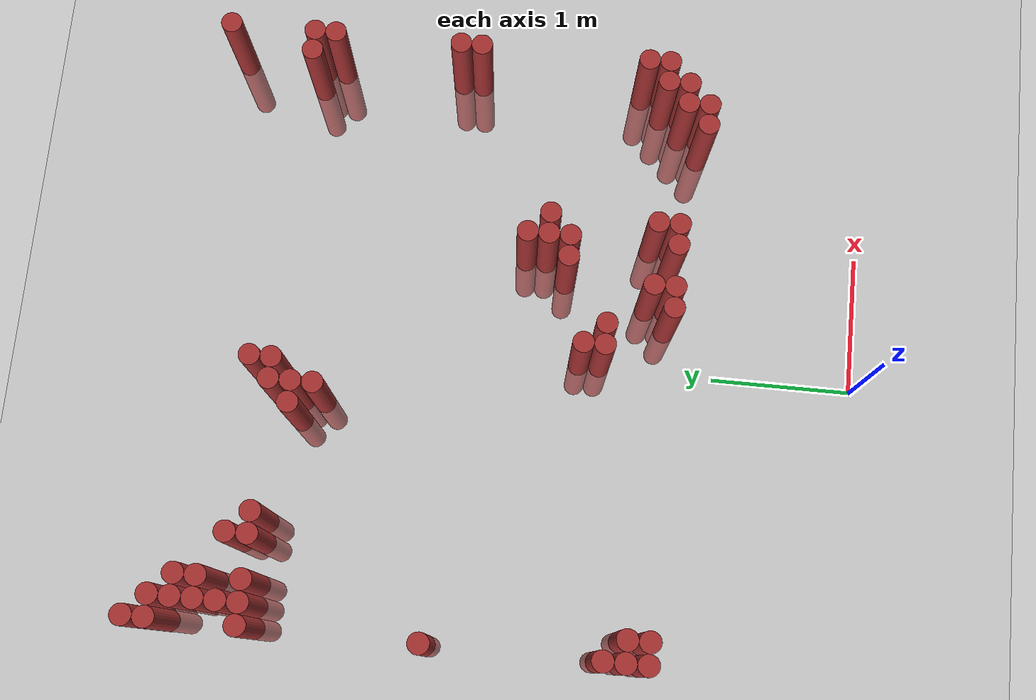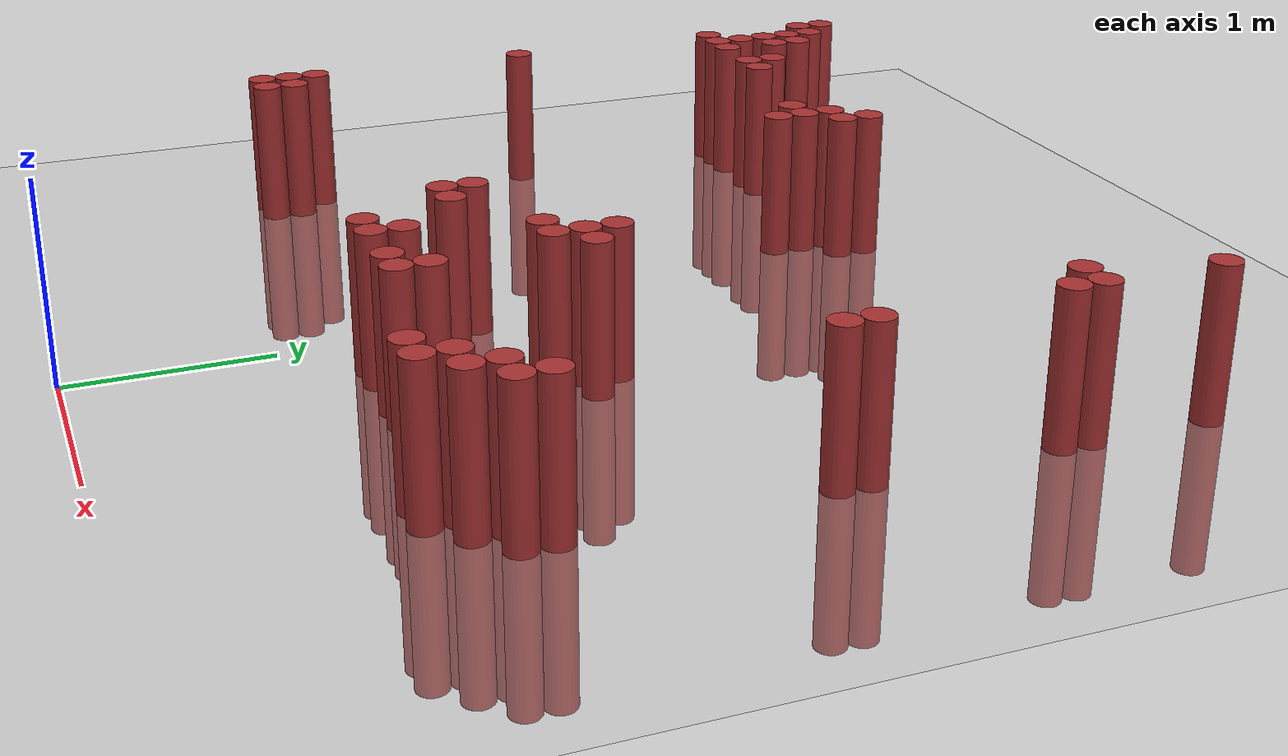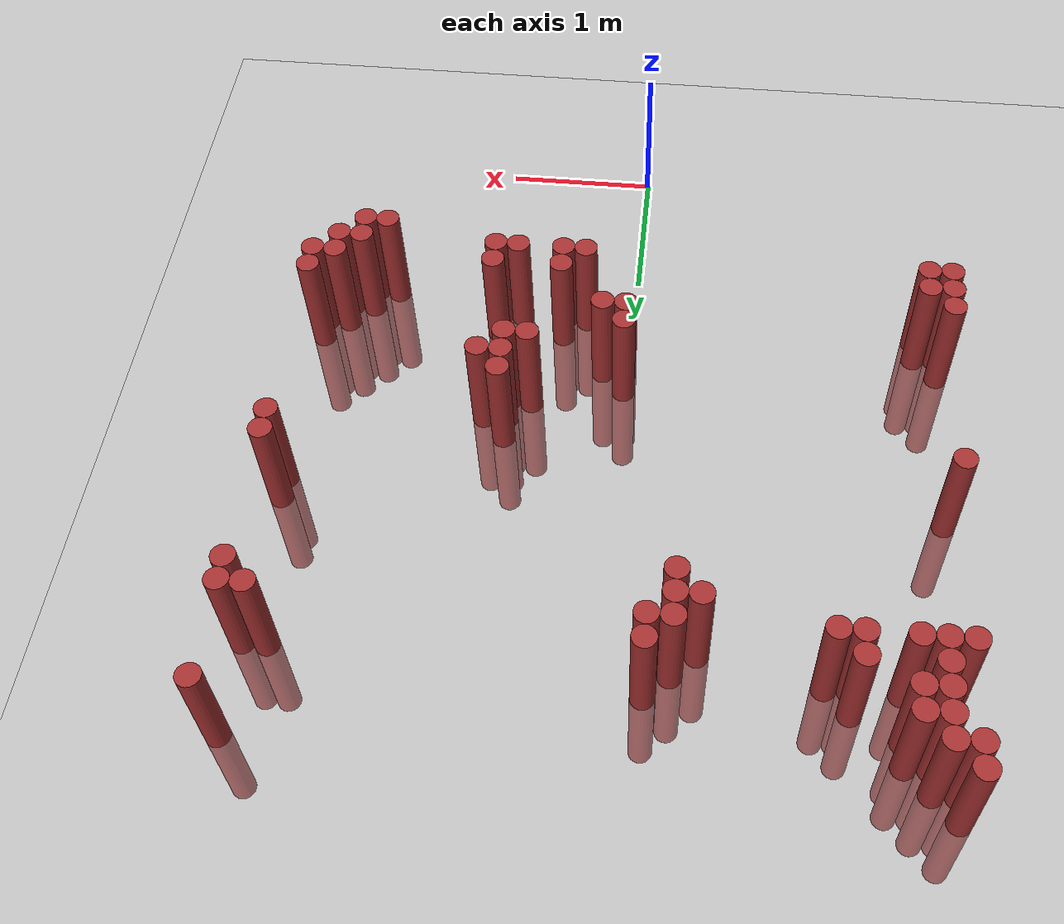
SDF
<sdf version="1.6">
 <world name="default">
  <model name="ground_plane">
   <static>1</static>
   <link name="link">
    <collision name="collision">
     <geometry><plane><normal>0 0 1</normal><size>100 100</size></plane></geometry>
     <surface><friction><ode><mu>100</mu><mu2>50</mu2></ode></friction></surface>
    </collision>
    <visual name="visual">
     <cast_shadows>0</cast_shadows>
     <geometry><plane><normal>0 0 1</normal><size>100 100</size></plane></geometry>
     <material>
      <script><uri>file://media/materials/scripts/gazebo.material</uri><name>Gazebo/Grey</name></script>
     </material>
    </visual>
   </link>
  </model>
  <model name="unit_cylinder_329">
   <static>1</static>
   <pose>-2.075000 1.375000 0.000000 0.000000 0.000000 0.000000</pose>
   <link name="link">
    <inertial>
     <mass>1</mass>
     <inertia><ixx>0.145833</ixx><ixy>0</ixy><ixz>0</ixz><iyy>0.145833</iyy><iyz>0</iyz><izz>0.125</izz></inertia>
    </inertial>
    <collision name="collision">
     <geometry><cylinder><radius>0.075000</radius><length>1.5</length></cylinder></geometry>
    </collision>
    <visual name="visual">
     <geometry><cylinder><radius>0.075000</radius><length>1.5</length></cylinder></geometry>
     <material>
      <ambient>0.648000 0.192000 0.192000 1</ambient>
      <diffuse>0.648000 0.192000 0.192000 1</diffuse>
     </material>
     <material>
      <script><name>Gazebo/Grey</name><uri>file://media/materials/scripts/gazebo.material</uri></script>
     </material>
    </visual>
   </link>
  </model>
  <model name="unit_cylinder_330">
   <static>1</static>
   <pose>-2.075000 1.525000 0.000000 0.000000 0.000000 0.000000</pose>
   <link name="link">
    <inertial>
     <mass>1</mass>
     <inertia><ixx>0.145833</ixx><ixy>0</ixy><ixz>0</ixz><iyy>0.145833</iyy><iyz>0</iyz><izz>0.125</izz></inertia>
    </inertial>
    <collision name="collision">
     <geometry><cylinder><radius>0.075000</radius><length>1.5</length></cylinder></geometry>
    </collision>
    <visual name="visual">
     <geometry><cylinder><radius>0.075000</radius><length>1.5</length></cylinder></geometry>
     <material>
      <ambient>0.648000 0.192000 0.192000 1</ambient>
      <diffuse>0.648000 0.192000 0.192000 1</diffuse>
     </material>
     <material>
      <script><name>Gazebo/Grey</name><uri>file://media/materials/scripts/gazebo.material</uri></script>
     </material>
    </visual>
   </link>
  </model>
  <model name="unit_cylinder_331">
   <static>1</static>
   <pose>-2.075000 1.675000 0.000000 0.000000 0.000000 0.000000</pose>
   <link name="link">
    <inertial>
     <mass>1</mass>
     <inertia><ixx>0.145833</ixx><ixy>0</ixy><ixz>0</ixz><iyy>0.145833</iyy><iyz>0</iyz><izz>0.125</izz></inertia>
    </inertial>
    <collision name="collision">
     <geometry><cylinder><radius>0.075000</radius><length>1.5</length></cylinder></geometry>
    </collision>
    <visual name="visual">
     <geometry><cylinder><radius>0.075000</radius><length>1.5</length></cylinder></geometry>
     <material>
      <ambient>0.648000 0.192000 0.192000 1</ambient>
      <diffuse>0.648000 0.192000 0.192000 1</diffuse>
     </material>
     <material>
      <script><name>Gazebo/Grey</name><uri>file://media/materials/scripts/gazebo.material</uri></script>
     </material>
    </visual>
   </link>
  </model>
  <model name="unit_cylinder_332">
   <static>1</static>
   <pose>-2.075000 2.875000 0.000000 0.000000 0.000000 0.000000</pose>
   <link name="link">
    <inertial>
     <mass>1</mass>
     <inertia><ixx>0.145833</ixx><ixy>0</ixy><ixz>0</ixz><iyy>0.145833</iyy><iyz>0</iyz><izz>0.125</izz></inertia>
    </inertial>
    <collision name="collision">
     <geometry><cylinder><radius>0.075000</radius><length>1.5</length></cylinder></geometry>
    </collision>
    <visual name="visual">
     <geometry><cylinder><radius>0.075000</radius><length>1.5</length></cylinder></geometry>
     <material>
      <ambient>0.648000 0.192000 0.192000 1</ambient>
      <diffuse>0.648000 0.192000 0.192000 1</diffuse>
     </material>
     <material>
      <script><name>Gazebo/Grey</name><uri>file://media/materials/scripts/gazebo.material</uri></script>
     </material>
    </visual>
   </link>
  </model>
  <model name="unit_cylinder_333">
   <static>1</static>
   <pose>-2.075000 4.075000 0.000000 0.000000 0.000000 0.000000</pose>
   <link name="link">
    <inertial>
     <mass>1</mass>
     <inertia><ixx>0.145833</ixx><ixy>0</ixy><ixz>0</ixz><iyy>0.145833</iyy><iyz>0</iyz><izz>0.125</izz></inertia>
    </inertial>
    <collision name="collision">
     <geometry><cylinder><radius>0.075000</radius><length>1.5</length></cylinder></geometry>
    </collision>
    <visual name="visual">
     <geometry><cylinder><radius>0.075000</radius><length>1.5</length></cylinder></geometry>
     <material>
      <ambient>0.648000 0.192000 0.192000 1</ambient>
      <diffuse>0.648000 0.192000 0.192000 1</diffuse>
     </material>
     <material>
      <script><name>Gazebo/Grey</name><uri>file://media/materials/scripts/gazebo.material</uri></script>
     </material>
    </visual>
   </link>
  </model>
  <model name="unit_cylinder_334">
   <static>1</static>
   <pose>-2.075000 4.675000 0.000000 0.000000 0.000000 0.000000</pose>
   <link name="link">
    <inertial>
     <mass>1</mass>
     <inertia><ixx>0.145833</ixx><ixy>0</ixy><ixz>0</ixz><iyy>0.145833</iyy><iyz>0</iyz><izz>0.125</izz></inertia>
    </inertial>
    <collision name="collision">
     <geometry><cylinder><radius>0.075000</radius><length>1.5</length></cylinder></geometry>
    </collision>
    <visual name="visual">
     <geometry><cylinder><radius>0.075000</radius><length>1.5</length></cylinder></geometry>
     <material>
      <ambient>0.648000 0.192000 0.192000 1</ambient>
      <diffuse>0.648000 0.192000 0.192000 1</diffuse>
     </material>
     <material>
      <script><name>Gazebo/Grey</name><uri>file://media/materials/scripts/gazebo.material</uri></script>
     </material>
    </visual>
   </link>
  </model>
  <model name="unit_cylinder_335">
   <static>1</static>
   <pose>-2.075000 4.825000 0.000000 0.000000 0.000000 0.000000</pose>
   <link name="link">
    <inertial>
     <mass>1</mass>
     <inertia><ixx>0.145833</ixx><ixy>0</ixy><ixz>0</ixz><iyy>0.145833</iyy><iyz>0</iyz><izz>0.125</izz></inertia>
    </inertial>
    <collision name="collision">
     <geometry><cylinder><radius>0.075000</radius><length>1.5</length></cylinder></geometry>
    </collision>
    <visual name="visual">
     <geometry><cylinder><radius>0.075000</radius><length>1.5</length></cylinder></geometry>
     <material>
      <ambient>0.648000 0.192000 0.192000 1</ambient>
      <diffuse>0.648000 0.192000 0.192000 1</diffuse>
     </material>
     <material>
      <script><name>Gazebo/Grey</name><uri>file://media/materials/scripts/gazebo.material</uri></script>
     </material>
    </visual>
   </link>
  </model>
  <model name="unit_cylinder_336">
   <static>1</static>
   <pose>-1.925000 1.375000 0.000000 0.000000 0.000000 0.000000</pose>
   <link name="link">
    <inertial>
     <mass>1</mass>
     <inertia><ixx>0.145833</ixx><ixy>0</ixy><ixz>0</ixz><iyy>0.145833</iyy><iyz>0</iyz><izz>0.125</izz></inertia>
    </inertial>
    <collision name="collision">
     <geometry><cylinder><radius>0.075000</radius><length>1.5</length></cylinder></geometry>
    </collision>
    <visual name="visual">
     <geometry><cylinder><radius>0.075000</radius><length>1.5</length></cylinder></geometry>
     <material>
      <ambient>0.648000 0.192000 0.192000 1</ambient>
      <diffuse>0.648000 0.192000 0.192000 1</diffuse>
     </material>
     <material>
      <script><name>Gazebo/Grey</name><uri>file://media/materials/scripts/gazebo.material</uri></script>
     </material>
    </visual>
   </link>
  </model>
  <model name="unit_cylinder_337">
   <static>1</static>
   <pose>-1.925000 1.525000 0.000000 0.000000 0.000000 0.000000</pose>
   <link name="link">
    <inertial>
     <mass>1</mass>
     <inertia><ixx>0.145833</ixx><ixy>0</ixy><ixz>0</ixz><iyy>0.145833</iyy><iyz>0</iyz><izz>0.125</izz></inertia>
    </inertial>
    <collision name="collision">
     <geometry><cylinder><radius>0.075000</radius><length>1.5</length></cylinder></geometry>
    </collision>
    <visual name="visual">
     <geometry><cylinder><radius>0.075000</radius><length>1.5</length></cylinder></geometry>
     <material>
      <ambient>0.648000 0.192000 0.192000 1</ambient>
      <diffuse>0.648000 0.192000 0.192000 1</diffuse>
     </material>
     <material>
      <script><name>Gazebo/Grey</name><uri>file://media/materials/scripts/gazebo.material</uri></script>
     </material>
    </visual>
   </link>
  </model>
  <model name="unit_cylinder_338">
   <static>1</static>
   <pose>-1.925000 4.075000 0.000000 0.000000 0.000000 0.000000</pose>
   <link name="link">
    <inertial>
     <mass>1</mass>
     <inertia><ixx>0.145833</ixx><ixy>0</ixy><ixz>0</ixz><iyy>0.145833</iyy><iyz>0</iyz><izz>0.125</izz></inertia>
    </inertial>
    <collision name="collision">
     <geometry><cylinder><radius>0.075000</radius><length>1.5</length></cylinder></geometry>
    </collision>
    <visual name="visual">
     <geometry><cylinder><radius>0.075000</radius><length>1.5</length></cylinder></geometry>
     <material>
      <ambient>0.648000 0.192000 0.192000 1</ambient>
      <diffuse>0.648000 0.192000 0.192000 1</diffuse>
     </material>
     <material>
      <script><name>Gazebo/Grey</name><uri>file://media/materials/scripts/gazebo.material</uri></script>
     </material>
    </visual>
   </link>
  </model>
  <model name="unit_cylinder_339">
   <static>1</static>
   <pose>-1.925000 4.225000 0.000000 0.000000 0.000000 0.000000</pose>
   <link name="link">
    <inertial>
     <mass>1</mass>
     <inertia><ixx>0.145833</ixx><ixy>0</ixy><ixz>0</ixz><iyy>0.145833</iyy><iyz>0</iyz><izz>0.125</izz></inertia>
    </inertial>
    <collision name="collision">
     <geometry><cylinder><radius>0.075000</radius><length>1.5</length></cylinder></geometry>
    </collision>
    <visual name="visual">
     <geometry><cylinder><radius>0.075000</radius><length>1.5</length></cylinder></geometry>
     <material>
      <ambient>0.648000 0.192000 0.192000 1</ambient>
      <diffuse>0.648000 0.192000 0.192000 1</diffuse>
     </material>
     <material>
      <script><name>Gazebo/Grey</name><uri>file://media/materials/scripts/gazebo.material</uri></script>
     </material>
    </visual>
   </link>
  </model>
  <model name="unit_cylinder_340">
   <static>1</static>
   <pose>-1.925000 4.375000 0.000000 0.000000 0.000000 0.000000</pose>
   <link name="link">
    <inertial>
     <mass>1</mass>
     <inertia><ixx>0.145833</ixx><ixy>0</ixy><ixz>0</ixz><iyy>0.145833</iyy><iyz>0</iyz><izz>0.125</izz></inertia>
    </inertial>
    <collision name="collision">
     <geometry><cylinder><radius>0.075000</radius><length>1.5</length></cylinder></geometry>
    </collision>
    <visual name="visual">
     <geometry><cylinder><radius>0.075000</radius><length>1.5</length></cylinder></geometry>
     <material>
      <ambient>0.648000 0.192000 0.192000 1</ambient>
      <diffuse>0.648000 0.192000 0.192000 1</diffuse>
     </material>
     <material>
      <script><name>Gazebo/Grey</name><uri>file://media/materials/scripts/gazebo.material</uri></script>
     </material>
    </visual>
   </link>
  </model>
  <model name="unit_cylinder_341">
   <static>1</static>
   <pose>-1.925000 4.525000 0.000000 0.000000 0.000000 0.000000</pose>
   <link name="link">
    <inertial>
     <mass>1</mass>
     <inertia><ixx>0.145833</ixx><ixy>0</ixy><ixz>0</ixz><iyy>0.145833</iyy><iyz>0</iyz><izz>0.125</izz></inertia>
    </inertial>
    <collision name="collision">
     <geometry><cylinder><radius>0.075000</radius><length>1.5</length></cylinder></geometry>
    </collision>
    <visual name="visual">
     <geometry><cylinder><radius>0.075000</radius><length>1.5</length></cylinder></geometry>
     <material>
      <ambient>0.648000 0.192000 0.192000 1</ambient>
      <diffuse>0.648000 0.192000 0.192000 1</diffuse>
     </material>
     <material>
      <script><name>Gazebo/Grey</name><uri>file://media/materials/scripts/gazebo.material</uri></script>
     </material>
    </visual>
   </link>
  </model>
  <model name="unit_cylinder_342">
   <static>1</static>
   <pose>-1.925000 4.675000 0.000000 0.000000 0.000000 0.000000</pose>
   <link name="link">
    <inertial>
     <mass>1</mass>
     <inertia><ixx>0.145833</ixx><ixy>0</ixy><ixz>0</ixz><iyy>0.145833</iyy><iyz>0</iyz><izz>0.125</izz></inertia>
    </inertial>
    <collision name="collision">
     <geometry><cylinder><radius>0.075000</radius><length>1.5</length></cylinder></geometry>
    </collision>
    <visual name="visual">
     <geometry><cylinder><radius>0.075000</radius><length>1.5</length></cylinder></geometry>
     <material>
      <ambient>0.648000 0.192000 0.192000 1</ambient>
      <diffuse>0.648000 0.192000 0.192000 1</diffuse>
     </material>
     <material>
      <script><name>Gazebo/Grey</name><uri>file://media/materials/scripts/gazebo.material</uri></script>
     </material>
    </visual>
   </link>
  </model>
  <model name="unit_cylinder_343">
   <static>1</static>
   <pose>-1.775000 4.075000 0.000000 0.000000 0.000000 0.000000</pose>
   <link name="link">
    <inertial>
     <mass>1</mass>
     <inertia><ixx>0.145833</ixx><ixy>0</ixy><ixz>0</ixz><iyy>0.145833</iyy><iyz>0</iyz><izz>0.125</izz></inertia>
    </inertial>
    <collision name="collision">
     <geometry><cylinder><radius>0.075000</radius><length>1.5</length></cylinder></geometry>
    </collision>
    <visual name="visual">
     <geometry><cylinder><radius>0.075000</radius><length>1.5</length></cylinder></geometry>
     <material>
      <ambient>0.648000 0.192000 0.192000 1</ambient>
      <diffuse>0.648000 0.192000 0.192000 1</diffuse>
     </material>
     <material>
      <script><name>Gazebo/Grey</name><uri>file://media/materials/scripts/gazebo.material</uri></script>
     </material>
    </visual>
   </link>
  </model>
  <model name="unit_cylinder_344">
   <static>1</static>
   <pose>-1.775000 4.375000 0.000000 0.000000 0.000000 0.000000</pose>
   <link name="link">
    <inertial>
     <mass>1</mass>
     <inertia><ixx>0.145833</ixx><ixy>0</ixy><ixz>0</ixz><iyy>0.145833</iyy><iyz>0</iyz><izz>0.125</izz></inertia>
    </inertial>
    <collision name="collision">
     <geometry><cylinder><radius>0.075000</radius><length>1.5</length></cylinder></geometry>
    </collision>
    <visual name="visual">
     <geometry><cylinder><radius>0.075000</radius><length>1.5</length></cylinder></geometry>
     <material>
      <ambient>0.648000 0.192000 0.192000 1</ambient>
      <diffuse>0.648000 0.192000 0.192000 1</diffuse>
     </material>
     <material>
      <script><name>Gazebo/Grey</name><uri>file://media/materials/scripts/gazebo.material</uri></script>
     </material>
    </visual>
   </link>
  </model>
  <model name="unit_cylinder_345">
   <static>1</static>
   <pose>-1.775000 4.525000 0.000000 0.000000 0.000000 0.000000</pose>
   <link name="link">
    <inertial>
     <mass>1</mass>
     <inertia><ixx>0.145833</ixx><ixy>0</ixy><ixz>0</ixz><iyy>0.145833</iyy><iyz>0</iyz><izz>0.125</izz></inertia>
    </inertial>
    <collision name="collision">
     <geometry><cylinder><radius>0.075000</radius><length>1.5</length></cylinder></geometry>
    </collision>
    <visual name="visual">
     <geometry><cylinder><radius>0.075000</radius><length>1.5</length></cylinder></geometry>
     <material>
      <ambient>0.648000 0.192000 0.192000 1</ambient>
      <diffuse>0.648000 0.192000 0.192000 1</diffuse>
     </material>
     <material>
      <script><name>Gazebo/Grey</name><uri>file://media/materials/scripts/gazebo.material</uri></script>
     </material>
    </visual>
   </link>
  </model>
  <model name="unit_cylinder_346">
   <static>1</static>
   <pose>-1.475000 4.075000 0.000000 0.000000 0.000000 0.000000</pose>
   <link name="link">
    <inertial>
     <mass>1</mass>
     <inertia><ixx>0.145833</ixx><ixy>0</ixy><ixz>0</ixz><iyy>0.145833</iyy><iyz>0</iyz><izz>0.125</izz></inertia>
    </inertial>
    <collision name="collision">
     <geometry><cylinder><radius>0.075000</radius><length>1.5</length></cylinder></geometry>
    </collision>
    <visual name="visual">
     <geometry><cylinder><radius>0.075000</radius><length>1.5</length></cylinder></geometry>
     <material>
      <ambient>0.648000 0.192000 0.192000 1</ambient>
      <diffuse>0.648000 0.192000 0.192000 1</diffuse>
     </material>
     <material>
      <script><name>Gazebo/Grey</name><uri>file://media/materials/scripts/gazebo.material</uri></script>
     </material>
    </visual>
   </link>
  </model>
  <model name="unit_cylinder_347">
   <static>1</static>
   <pose>-1.475000 4.225000 0.000000 0.000000 0.000000 0.000000</pose>
   <link name="link">
    <inertial>
     <mass>1</mass>
     <inertia><ixx>0.145833</ixx><ixy>0</ixy><ixz>0</ixz><iyy>0.145833</iyy><iyz>0</iyz><izz>0.125</izz></inertia>
    </inertial>
    <collision name="collision">
     <geometry><cylinder><radius>0.075000</radius><length>1.5</length></cylinder></geometry>
    </collision>
    <visual name="visual">
     <geometry><cylinder><radius>0.075000</radius><length>1.5</length></cylinder></geometry>
     <material>
      <ambient>0.648000 0.192000 0.192000 1</ambient>
      <diffuse>0.648000 0.192000 0.192000 1</diffuse>
     </material>
     <material>
      <script><name>Gazebo/Grey</name><uri>file://media/materials/scripts/gazebo.material</uri></script>
     </material>
    </visual>
   </link>
  </model>
  <model name="unit_cylinder_348">
   <static>1</static>
   <pose>-1.325000 4.075000 0.000000 0.000000 0.000000 0.000000</pose>
   <link name="link">
    <inertial>
     <mass>1</mass>
     <inertia><ixx>0.145833</ixx><ixy>0</ixy><ixz>0</ixz><iyy>0.145833</iyy><iyz>0</iyz><izz>0.125</izz></inertia>
    </inertial>
    <collision name="collision">
     <geometry><cylinder><radius>0.075000</radius><length>1.5</length></cylinder></geometry>
    </collision>
    <visual name="visual">
     <geometry><cylinder><radius>0.075000</radius><length>1.5</length></cylinder></geometry>
     <material>
      <ambient>0.648000 0.192000 0.192000 1</ambient>
      <diffuse>0.648000 0.192000 0.192000 1</diffuse>
     </material>
     <material>
      <script><name>Gazebo/Grey</name><uri>file://media/materials/scripts/gazebo.material</uri></script>
     </material>
    </visual>
   </link>
  </model>
  <model name="unit_cylinder_354">
   <static>1</static>
   <pose>-0.575000 3.925000 0.000000 0.000000 0.000000 0.000000</pose>
   <link name="link">
    <inertial>
     <mass>1</mass>
     <inertia><ixx>0.145833</ixx><ixy>0</ixy><ixz>0</ixz><iyy>0.145833</iyy><iyz>0</iyz><izz>0.125</izz></inertia>
    </inertial>
    <collision name="collision">
     <geometry><cylinder><radius>0.075000</radius><length>1.5</length></cylinder></geometry>
    </collision>
    <visual name="visual">
     <geometry><cylinder><radius>0.075000</radius><length>1.5</length></cylinder></geometry>
     <material>
      <ambient>0.648000 0.192000 0.192000 1</ambient>
      <diffuse>0.648000 0.192000 0.192000 1</diffuse>
     </material>
     <material>
      <script><name>Gazebo/Grey</name><uri>file://media/materials/scripts/gazebo.material</uri></script>
     </material>
    </visual>
   </link>
  </model>
  <model name="unit_cylinder_355">
   <static>1</static>
   <pose>-0.425000 3.775000 0.000000 0.000000 0.000000 0.000000</pose>
   <link name="link">
    <inertial>
     <mass>1</mass>
     <inertia><ixx>0.145833</ixx><ixy>0</ixy><ixz>0</ixz><iyy>0.145833</iyy><iyz>0</iyz><izz>0.125</izz></inertia>
    </inertial>
    <collision name="collision">
     <geometry><cylinder><radius>0.075000</radius><length>1.5</length></cylinder></geometry>
    </collision>
    <visual name="visual">
     <geometry><cylinder><radius>0.075000</radius><length>1.5</length></cylinder></geometry>
     <material>
      <ambient>0.648000 0.192000 0.192000 1</ambient>
      <diffuse>0.648000 0.192000 0.192000 1</diffuse>
     </material>
     <material>
      <script><name>Gazebo/Grey</name><uri>file://media/materials/scripts/gazebo.material</uri></script>
     </material>
    </visual>
   </link>
  </model>
  <model name="unit_cylinder_356">
   <static>1</static>
   <pose>-0.425000 3.925000 0.000000 0.000000 0.000000 0.000000</pose>
   <link name="link">
    <inertial>
     <mass>1</mass>
     <inertia><ixx>0.145833</ixx><ixy>0</ixy><ixz>0</ixz><iyy>0.145833</iyy><iyz>0</iyz><izz>0.125</izz></inertia>
    </inertial>
    <collision name="collision">
     <geometry><cylinder><radius>0.075000</radius><length>1.5</length></cylinder></geometry>
    </collision>
    <visual name="visual">
     <geometry><cylinder><radius>0.075000</radius><length>1.5</length></cylinder></geometry>
     <material>
      <ambient>0.648000 0.192000 0.192000 1</ambient>
      <diffuse>0.648000 0.192000 0.192000 1</diffuse>
     </material>
     <material>
      <script><name>Gazebo/Grey</name><uri>file://media/materials/scripts/gazebo.material</uri></script>
     </material>
    </visual>
   </link>
  </model>
  <model name="unit_cylinder_357">
   <static>1</static>
   <pose>-0.425000 4.075000 0.000000 0.000000 0.000000 0.000000</pose>
   <link name="link">
    <inertial>
     <mass>1</mass>
     <inertia><ixx>0.145833</ixx><ixy>0</ixy><ixz>0</ixz><iyy>0.145833</iyy><iyz>0</iyz><izz>0.125</izz></inertia>
    </inertial>
    <collision name="collision">
     <geometry><cylinder><radius>0.075000</radius><length>1.5</length></cylinder></geometry>
    </collision>
    <visual name="visual">
     <geometry><cylinder><radius>0.075000</radius><length>1.5</length></cylinder></geometry>
     <material>
      <ambient>0.648000 0.192000 0.192000 1</ambient>
      <diffuse>0.648000 0.192000 0.192000 1</diffuse>
     </material>
     <material>
      <script><name>Gazebo/Grey</name><uri>file://media/materials/scripts/gazebo.material</uri></script>
     </material>
    </visual>
   </link>
  </model>
  <model name="unit_cylinder_358">
   <static>1</static>
   <pose>-0.275000 4.075000 0.000000 0.000000 0.000000 0.000000</pose>
   <link name="link">
    <inertial>
     <mass>1</mass>
     <inertia><ixx>0.145833</ixx><ixy>0</ixy><ixz>0</ixz><iyy>0.145833</iyy><iyz>0</iyz><izz>0.125</izz></inertia>
    </inertial>
    <collision name="collision">
     <geometry><cylinder><radius>0.075000</radius><length>1.5</length></cylinder></geometry>
    </collision>
    <visual name="visual">
     <geometry><cylinder><radius>0.075000</radius><length>1.5</length></cylinder></geometry>
     <material>
      <ambient>0.648000 0.192000 0.192000 1</ambient>
      <diffuse>0.648000 0.192000 0.192000 1</diffuse>
     </material>
     <material>
      <script><name>Gazebo/Grey</name><uri>file://media/materials/scripts/gazebo.material</uri></script>
     </material>
    </visual>
   </link>
  </model>
  <model name="unit_cylinder_359">
   <static>1</static>
   <pose>-0.275000 4.225000 0.000000 0.000000 0.000000 0.000000</pose>
   <link name="link">
    <inertial>
     <mass>1</mass>
     <inertia><ixx>0.145833</ixx><ixy>0</ixy><ixz>0</ixz><iyy>0.145833</iyy><iyz>0</iyz><izz>0.125</izz></inertia>
    </inertial>
    <collision name="collision">
     <geometry><cylinder><radius>0.075000</radius><length>1.5</length></cylinder></geometry>
    </collision>
    <visual name="visual">
     <geometry><cylinder><radius>0.075000</radius><length>1.5</length></cylinder></geometry>
     <material>
      <ambient>0.648000 0.192000 0.192000 1</ambient>
      <diffuse>0.648000 0.192000 0.192000 1</diffuse>
     </material>
     <material>
      <script><name>Gazebo/Grey</name><uri>file://media/materials/scripts/gazebo.material</uri></script>
     </material>
    </visual>
   </link>
  </model>
  <model name="unit_cylinder_363">
   <static>1</static>
   <pose>0.025000 1.825000 0.000000 0.000000 0.000000 0.000000</pose>
   <link name="link">
    <inertial>
     <mass>1</mass>
     <inertia><ixx>0.145833</ixx><ixy>0</ixy><ixz>0</ixz><iyy>0.145833</iyy><iyz>0</iyz><izz>0.125</izz></inertia>
    </inertial>
    <collision name="collision">
     <geometry><cylinder><radius>0.075000</radius><length>1.5</length></cylinder></geometry>
    </collision>
    <visual name="visual">
     <geometry><cylinder><radius>0.075000</radius><length>1.5</length></cylinder></geometry>
     <material>
      <ambient>0.648000 0.192000 0.192000 1</ambient>
      <diffuse>0.648000 0.192000 0.192000 1</diffuse>
     </material>
     <material>
      <script><name>Gazebo/Grey</name><uri>file://media/materials/scripts/gazebo.material</uri></script>
     </material>
    </visual>
   </link>
  </model>
  <model name="unit_cylinder_364">
   <static>1</static>
   <pose>0.025000 1.975000 0.000000 0.000000 0.000000 0.000000</pose>
   <link name="link">
    <inertial>
     <mass>1</mass>
     <inertia><ixx>0.145833</ixx><ixy>0</ixy><ixz>0</ixz><iyy>0.145833</iyy><iyz>0</iyz><izz>0.125</izz></inertia>
    </inertial>
    <collision name="collision">
     <geometry><cylinder><radius>0.075000</radius><length>1.5</length></cylinder></geometry>
    </collision>
    <visual name="visual">
     <geometry><cylinder><radius>0.075000</radius><length>1.5</length></cylinder></geometry>
     <material>
      <ambient>0.648000 0.192000 0.192000 1</ambient>
      <diffuse>0.648000 0.192000 0.192000 1</diffuse>
     </material>
     <material>
      <script><name>Gazebo/Grey</name><uri>file://media/materials/scripts/gazebo.material</uri></script>
     </material>
    </visual>
   </link>
  </model>
  <model name="unit_cylinder_368">
   <static>1</static>
   <pose>0.175000 1.825000 0.000000 0.000000 0.000000 0.000000</pose>
   <link name="link">
    <inertial>
     <mass>1</mass>
     <inertia><ixx>0.145833</ixx><ixy>0</ixy><ixz>0</ixz><iyy>0.145833</iyy><iyz>0</iyz><izz>0.125</izz></inertia>
    </inertial>
    <collision name="collision">
     <geometry><cylinder><radius>0.075000</radius><length>1.5</length></cylinder></geometry>
    </collision>
    <visual name="visual">
     <geometry><cylinder><radius>0.075000</radius><length>1.5</length></cylinder></geometry>
     <material>
      <ambient>0.648000 0.192000 0.192000 1</ambient>
      <diffuse>0.648000 0.192000 0.192000 1</diffuse>
     </material>
     <material>
      <script><name>Gazebo/Grey</name><uri>file://media/materials/scripts/gazebo.material</uri></script>
     </material>
    </visual>
   </link>
  </model>
  <model name="unit_cylinder_374">
   <static>1</static>
   <pose>0.325000 1.375000 0.000000 0.000000 0.000000 0.000000</pose>
   <link name="link">
    <inertial>
     <mass>1</mass>
     <inertia><ixx>0.145833</ixx><ixy>0</ixy><ixz>0</ixz><iyy>0.145833</iyy><iyz>0</iyz><izz>0.125</izz></inertia>
    </inertial>
    <collision name="collision">
     <geometry><cylinder><radius>0.075000</radius><length>1.5</length></cylinder></geometry>
    </collision>
    <visual name="visual">
     <geometry><cylinder><radius>0.075000</radius><length>1.5</length></cylinder></geometry>
     <material>
      <ambient>0.648000 0.192000 0.192000 1</ambient>
      <diffuse>0.648000 0.192000 0.192000 1</diffuse>
     </material>
     <material>
      <script><name>Gazebo/Grey</name><uri>file://media/materials/scripts/gazebo.material</uri></script>
     </material>
    </visual>
   </link>
  </model>
  <model name="unit_cylinder_378">
   <static>1</static>
   <pose>0.475000 1.375000 0.000000 0.000000 0.000000 0.000000</pose>
   <link name="link">
    <inertial>
     <mass>1</mass>
     <inertia><ixx>0.145833</ixx><ixy>0</ixy><ixz>0</ixz><iyy>0.145833</iyy><iyz>0</iyz><izz>0.125</izz></inertia>
    </inertial>
    <collision name="collision">
     <geometry><cylinder><radius>0.075000</radius><length>1.5</length></cylinder></geometry>
    </collision>
    <visual name="visual">
     <geometry><cylinder><radius>0.075000</radius><length>1.5</length></cylinder></geometry>
     <material>
      <ambient>0.648000 0.192000 0.192000 1</ambient>
      <diffuse>0.648000 0.192000 0.192000 1</diffuse>
     </material>
     <material>
      <script><name>Gazebo/Grey</name><uri>file://media/materials/scripts/gazebo.material</uri></script>
     </material>
    </visual>
   </link>
  </model>
  <model name="unit_cylinder_379">
   <static>1</static>
   <pose>0.475000 1.525000 0.000000 0.000000 0.000000 0.000000</pose>
   <link name="link">
    <inertial>
     <mass>1</mass>
     <inertia><ixx>0.145833</ixx><ixy>0</ixy><ixz>0</ixz><iyy>0.145833</iyy><iyz>0</iyz><izz>0.125</izz></inertia>
    </inertial>
    <collision name="collision">
     <geometry><cylinder><radius>0.075000</radius><length>1.5</length></cylinder></geometry>
    </collision>
    <visual name="visual">
     <geometry><cylinder><radius>0.075000</radius><length>1.5</length></cylinder></geometry>
     <material>
      <ambient>0.648000 0.192000 0.192000 1</ambient>
      <diffuse>0.648000 0.192000 0.192000 1</diffuse>
     </material>
     <material>
      <script><name>Gazebo/Grey</name><uri>file://media/materials/scripts/gazebo.material</uri></script>
     </material>
    </visual>
   </link>
  </model>
  <model name="unit_cylinder_380">
   <static>1</static>
   <pose>0.625000 2.125000 0.000000 0.000000 0.000000 0.000000</pose>
   <link name="link">
    <inertial>
     <mass>1</mass>
     <inertia><ixx>0.145833</ixx><ixy>0</ixy><ixz>0</ixz><iyy>0.145833</iyy><iyz>0</iyz><izz>0.125</izz></inertia>
    </inertial>
    <collision name="collision">
     <geometry><cylinder><radius>0.075000</radius><length>1.5</length></cylinder></geometry>
    </collision>
    <visual name="visual">
     <geometry><cylinder><radius>0.075000</radius><length>1.5</length></cylinder></geometry>
     <material>
      <ambient>0.648000 0.192000 0.192000 1</ambient>
      <diffuse>0.648000 0.192000 0.192000 1</diffuse>
     </material>
     <material>
      <script><name>Gazebo/Grey</name><uri>file://media/materials/scripts/gazebo.material</uri></script>
     </material>
    </visual>
   </link>
  </model>
  <model name="unit_cylinder_381">
   <static>1</static>
   <pose>0.775000 1.375000 0.000000 0.000000 0.000000 0.000000</pose>
   <link name="link">
    <inertial>
     <mass>1</mass>
     <inertia><ixx>0.145833</ixx><ixy>0</ixy><ixz>0</ixz><iyy>0.145833</iyy><iyz>0</iyz><izz>0.125</izz></inertia>
    </inertial>
    <collision name="collision">
     <geometry><cylinder><radius>0.075000</radius><length>1.5</length></cylinder></geometry>
    </collision>
    <visual name="visual">
     <geometry><cylinder><radius>0.075000</radius><length>1.5</length></cylinder></geometry>
     <material>
      <ambient>0.648000 0.192000 0.192000 1</ambient>
      <diffuse>0.648000 0.192000 0.192000 1</diffuse>
     </material>
     <material>
      <script><name>Gazebo/Grey</name><uri>file://media/materials/scripts/gazebo.material</uri></script>
     </material>
    </visual>
   </link>
  </model>
  <model name="unit_cylinder_382">
   <static>1</static>
   <pose>0.775000 2.125000 0.000000 0.000000 0.000000 0.000000</pose>
   <link name="link">
    <inertial>
     <mass>1</mass>
     <inertia><ixx>0.145833</ixx><ixy>0</ixy><ixz>0</ixz><iyy>0.145833</iyy><iyz>0</iyz><izz>0.125</izz></inertia>
    </inertial>
    <collision name="collision">
     <geometry><cylinder><radius>0.075000</radius><length>1.5</length></cylinder></geometry>
    </collision>
    <visual name="visual">
     <geometry><cylinder><radius>0.075000</radius><length>1.5</length></cylinder></geometry>
     <material>
      <ambient>0.648000 0.192000 0.192000 1</ambient>
      <diffuse>0.648000 0.192000 0.192000 1</diffuse>
     </material>
     <material>
      <script><name>Gazebo/Grey</name><uri>file://media/materials/scripts/gazebo.material</uri></script>
     </material>
    </visual>
   </link>
  </model>
  <model name="unit_cylinder_383">
   <static>1</static>
   <pose>0.775000 2.275000 0.000000 0.000000 0.000000 0.000000</pose>
   <link name="link">
    <inertial>
     <mass>1</mass>
     <inertia><ixx>0.145833</ixx><ixy>0</ixy><ixz>0</ixz><iyy>0.145833</iyy><iyz>0</iyz><izz>0.125</izz></inertia>
    </inertial>
    <collision name="collision">
     <geometry><cylinder><radius>0.075000</radius><length>1.5</length></cylinder></geometry>
    </collision>
    <visual name="visual">
     <geometry><cylinder><radius>0.075000</radius><length>1.5</length></cylinder></geometry>
     <material>
      <ambient>0.648000 0.192000 0.192000 1</ambient>
      <diffuse>0.648000 0.192000 0.192000 1</diffuse>
     </material>
     <material>
      <script><name>Gazebo/Grey</name><uri>file://media/materials/scripts/gazebo.material</uri></script>
     </material>
    </visual>
   </link>
  </model>
  <model name="unit_cylinder_384">
   <static>1</static>
   <pose>0.775000 2.425000 0.000000 0.000000 0.000000 0.000000</pose>
   <link name="link">
    <inertial>
     <mass>1</mass>
     <inertia><ixx>0.145833</ixx><ixy>0</ixy><ixz>0</ixz><iyy>0.145833</iyy><iyz>0</iyz><izz>0.125</izz></inertia>
    </inertial>
    <collision name="collision">
     <geometry><cylinder><radius>0.075000</radius><length>1.5</length></cylinder></geometry>
    </collision>
    <visual name="visual">
     <geometry><cylinder><radius>0.075000</radius><length>1.5</length></cylinder></geometry>
     <material>
      <ambient>0.648000 0.192000 0.192000 1</ambient>
      <diffuse>0.648000 0.192000 0.192000 1</diffuse>
     </material>
     <material>
      <script><name>Gazebo/Grey</name><uri>file://media/materials/scripts/gazebo.material</uri></script>
     </material>
    </visual>
   </link>
  </model>
  <model name="unit_cylinder_385">
   <static>1</static>
   <pose>0.925000 1.375000 0.000000 0.000000 0.000000 0.000000</pose>
   <link name="link">
    <inertial>
     <mass>1</mass>
     <inertia><ixx>0.145833</ixx><ixy>0</ixy><ixz>0</ixz><iyy>0.145833</iyy><iyz>0</iyz><izz>0.125</izz></inertia>
    </inertial>
    <collision name="collision">
     <geometry><cylinder><radius>0.075000</radius><length>1.5</length></cylinder></geometry>
    </collision>
    <visual name="visual">
     <geometry><cylinder><radius>0.075000</radius><length>1.5</length></cylinder></geometry>
     <material>
      <ambient>0.648000 0.192000 0.192000 1</ambient>
      <diffuse>0.648000 0.192000 0.192000 1</diffuse>
     </material>
     <material>
      <script><name>Gazebo/Grey</name><uri>file://media/materials/scripts/gazebo.material</uri></script>
     </material>
    </visual>
   </link>
  </model>
  <model name="unit_cylinder_386">
   <static>1</static>
   <pose>0.925000 1.525000 0.000000 0.000000 0.000000 0.000000</pose>
   <link name="link">
    <inertial>
     <mass>1</mass>
     <inertia><ixx>0.145833</ixx><ixy>0</ixy><ixz>0</ixz><iyy>0.145833</iyy><iyz>0</iyz><izz>0.125</izz></inertia>
    </inertial>
    <collision name="collision">
     <geometry><cylinder><radius>0.075000</radius><length>1.5</length></cylinder></geometry>
    </collision>
    <visual name="visual">
     <geometry><cylinder><radius>0.075000</radius><length>1.5</length></cylinder></geometry>
     <material>
      <ambient>0.648000 0.192000 0.192000 1</ambient>
      <diffuse>0.648000 0.192000 0.192000 1</diffuse>
     </material>
     <material>
      <script><name>Gazebo/Grey</name><uri>file://media/materials/scripts/gazebo.material</uri></script>
     </material>
    </visual>
   </link>
  </model>
  <model name="unit_cylinder_387">
   <static>1</static>
   <pose>0.925000 2.275000 0.000000 0.000000 0.000000 0.000000</pose>
   <link name="link">
    <inertial>
     <mass>1</mass>
     <inertia><ixx>0.145833</ixx><ixy>0</ixy><ixz>0</ixz><iyy>0.145833</iyy><iyz>0</iyz><izz>0.125</izz></inertia>
    </inertial>
    <collision name="collision">
     <geometry><cylinder><radius>0.075000</radius><length>1.5</length></cylinder></geometry>
    </collision>
    <visual name="visual">
     <geometry><cylinder><radius>0.075000</radius><length>1.5</length></cylinder></geometry>
     <material>
      <ambient>0.648000 0.192000 0.192000 1</ambient>
      <diffuse>0.648000 0.192000 0.192000 1</diffuse>
     </material>
     <material>
      <script><name>Gazebo/Grey</name><uri>file://media/materials/scripts/gazebo.material</uri></script>
     </material>
    </visual>
   </link>
  </model>
  <model name="unit_cylinder_403">
   <static>1</static>
   <pose>1.675000 1.225000 0.000000 0.000000 0.000000 0.000000</pose>
   <link name="link">
    <inertial>
     <mass>1</mass>
     <inertia><ixx>0.145833</ixx><ixy>0</ixy><ixz>0</ixz><iyy>0.145833</iyy><iyz>0</iyz><izz>0.125</izz></inertia>
    </inertial>
    <collision name="collision">
     <geometry><cylinder><radius>0.075000</radius><length>1.5</length></cylinder></geometry>
    </collision>
    <visual name="visual">
     <geometry><cylinder><radius>0.075000</radius><length>1.5</length></cylinder></geometry>
     <material>
      <ambient>0.648000 0.192000 0.192000 1</ambient>
      <diffuse>0.648000 0.192000 0.192000 1</diffuse>
     </material>
     <material>
      <script><name>Gazebo/Grey</name><uri>file://media/materials/scripts/gazebo.material</uri></script>
     </material>
    </visual>
   </link>
  </model>
  <model name="unit_cylinder_408">
   <static>1</static>
   <pose>1.825000 1.225000 0.000000 0.000000 0.000000 0.000000</pose>
   <link name="link">
    <inertial>
     <mass>1</mass>
     <inertia><ixx>0.145833</ixx><ixy>0</ixy><ixz>0</ixz><iyy>0.145833</iyy><iyz>0</iyz><izz>0.125</izz></inertia>
    </inertial>
    <collision name="collision">
     <geometry><cylinder><radius>0.075000</radius><length>1.5</length></cylinder></geometry>
    </collision>
    <visual name="visual">
     <geometry><cylinder><radius>0.075000</radius><length>1.5</length></cylinder></geometry>
     <material>
      <ambient>0.648000 0.192000 0.192000 1</ambient>
      <diffuse>0.648000 0.192000 0.192000 1</diffuse>
     </material>
     <material>
      <script><name>Gazebo/Grey</name><uri>file://media/materials/scripts/gazebo.material</uri></script>
     </material>
    </visual>
   </link>
  </model>
  <model name="unit_cylinder_409">
   <static>1</static>
   <pose>1.825000 1.375000 0.000000 0.000000 0.000000 0.000000</pose>
   <link name="link">
    <inertial>
     <mass>1</mass>
     <inertia><ixx>0.145833</ixx><ixy>0</ixy><ixz>0</ixz><iyy>0.145833</iyy><iyz>0</iyz><izz>0.125</izz></inertia>
    </inertial>
    <collision name="collision">
     <geometry><cylinder><radius>0.075000</radius><length>1.5</length></cylinder></geometry>
    </collision>
    <visual name="visual">
     <geometry><cylinder><radius>0.075000</radius><length>1.5</length></cylinder></geometry>
     <material>
      <ambient>0.648000 0.192000 0.192000 1</ambient>
      <diffuse>0.648000 0.192000 0.192000 1</diffuse>
     </material>
     <material>
      <script><name>Gazebo/Grey</name><uri>file://media/materials/scripts/gazebo.material</uri></script>
     </material>
    </visual>
   </link>
  </model>
  <model name="unit_cylinder_412">
   <static>1</static>
   <pose>1.975000 1.375000 0.000000 0.000000 0.000000 0.000000</pose>
   <link name="link">
    <inertial>
     <mass>1</mass>
     <inertia><ixx>0.145833</ixx><ixy>0</ixy><ixz>0</ixz><iyy>0.145833</iyy><iyz>0</iyz><izz>0.125</izz></inertia>
    </inertial>
    <collision name="collision">
     <geometry><cylinder><radius>0.075000</radius><length>1.5</length></cylinder></geometry>
    </collision>
    <visual name="visual">
     <geometry><cylinder><radius>0.075000</radius><length>1.5</length></cylinder></geometry>
     <material>
      <ambient>0.648000 0.192000 0.192000 1</ambient>
      <diffuse>0.648000 0.192000 0.192000 1</diffuse>
     </material>
     <material>
      <script><name>Gazebo/Grey</name><uri>file://media/materials/scripts/gazebo.material</uri></script>
     </material>
    </visual>
   </link>
  </model>
  <model name="unit_cylinder_413">
   <static>1</static>
   <pose>1.975000 1.525000 0.000000 0.000000 0.000000 0.000000</pose>
   <link name="link">
    <inertial>
     <mass>1</mass>
     <inertia><ixx>0.145833</ixx><ixy>0</ixy><ixz>0</ixz><iyy>0.145833</iyy><iyz>0</iyz><izz>0.125</izz></inertia>
    </inertial>
    <collision name="collision">
     <geometry><cylinder><radius>0.075000</radius><length>1.5</length></cylinder></geometry>
    </collision>
    <visual name="visual">
     <geometry><cylinder><radius>0.075000</radius><length>1.5</length></cylinder></geometry>
     <material>
      <ambient>0.648000 0.192000 0.192000 1</ambient>
      <diffuse>0.648000 0.192000 0.192000 1</diffuse>
     </material>
     <material>
      <script><name>Gazebo/Grey</name><uri>file://media/materials/scripts/gazebo.material</uri></script>
     </material>
    </visual>
   </link>
  </model>
  <model name="unit_cylinder_414">
   <static>1</static>
   <pose>1.975000 4.075000 0.000000 0.000000 0.000000 0.000000</pose>
   <link name="link">
    <inertial>
     <mass>1</mass>
     <inertia><ixx>0.145833</ixx><ixy>0</ixy><ixz>0</ixz><iyy>0.145833</iyy><iyz>0</iyz><izz>0.125</izz></inertia>
    </inertial>
    <collision name="collision">
     <geometry><cylinder><radius>0.075000</radius><length>1.5</length></cylinder></geometry>
    </collision>
    <visual name="visual">
     <geometry><cylinder><radius>0.075000</radius><length>1.5</length></cylinder></geometry>
     <material>
      <ambient>0.648000 0.192000 0.192000 1</ambient>
      <diffuse>0.648000 0.192000 0.192000 1</diffuse>
     </material>
     <material>
      <script><name>Gazebo/Grey</name><uri>file://media/materials/scripts/gazebo.material</uri></script>
     </material>
    </visual>
   </link>
  </model>
  <model name="unit_cylinder_419">
   <static>1</static>
   <pose>2.125000 1.525000 0.000000 0.000000 0.000000 0.000000</pose>
   <link name="link">
    <inertial>
     <mass>1</mass>
     <inertia><ixx>0.145833</ixx><ixy>0</ixy><ixz>0</ixz><iyy>0.145833</iyy><iyz>0</iyz><izz>0.125</izz></inertia>
    </inertial>
    <collision name="collision">
     <geometry><cylinder><radius>0.075000</radius><length>1.5</length></cylinder></geometry>
    </collision>
    <visual name="visual">
     <geometry><cylinder><radius>0.075000</radius><length>1.5</length></cylinder></geometry>
     <material>
      <ambient>0.648000 0.192000 0.192000 1</ambient>
      <diffuse>0.648000 0.192000 0.192000 1</diffuse>
     </material>
     <material>
      <script><name>Gazebo/Grey</name><uri>file://media/materials/scripts/gazebo.material</uri></script>
     </material>
    </visual>
   </link>
  </model>
  <model name="unit_cylinder_420">
   <static>1</static>
   <pose>2.125000 1.675000 0.000000 0.000000 0.000000 0.000000</pose>
   <link name="link">
    <inertial>
     <mass>1</mass>
     <inertia><ixx>0.145833</ixx><ixy>0</ixy><ixz>0</ixz><iyy>0.145833</iyy><iyz>0</iyz><izz>0.125</izz></inertia>
    </inertial>
    <collision name="collision">
     <geometry><cylinder><radius>0.075000</radius><length>1.5</length></cylinder></geometry>
    </collision>
    <visual name="visual">
     <geometry><cylinder><radius>0.075000</radius><length>1.5</length></cylinder></geometry>
     <material>
      <ambient>0.648000 0.192000 0.192000 1</ambient>
      <diffuse>0.648000 0.192000 0.192000 1</diffuse>
     </material>
     <material>
      <script><name>Gazebo/Grey</name><uri>file://media/materials/scripts/gazebo.material</uri></script>
     </material>
    </visual>
   </link>
  </model>
  <model name="unit_cylinder_421">
   <static>1</static>
   <pose>2.125000 2.875000 0.000000 0.000000 0.000000 0.000000</pose>
   <link name="link">
    <inertial>
     <mass>1</mass>
     <inertia><ixx>0.145833</ixx><ixy>0</ixy><ixz>0</ixz><iyy>0.145833</iyy><iyz>0</iyz><izz>0.125</izz></inertia>
    </inertial>
    <collision name="collision">
     <geometry><cylinder><radius>0.075000</radius><length>1.5</length></cylinder></geometry>
    </collision>
    <visual name="visual">
     <geometry><cylinder><radius>0.075000</radius><length>1.5</length></cylinder></geometry>
     <material>
      <ambient>0.648000 0.192000 0.192000 1</ambient>
      <diffuse>0.648000 0.192000 0.192000 1</diffuse>
     </material>
     <material>
      <script><name>Gazebo/Grey</name><uri>file://media/materials/scripts/gazebo.material</uri></script>
     </material>
    </visual>
   </link>
  </model>
  <model name="unit_cylinder_422">
   <static>1</static>
   <pose>2.125000 3.025000 0.000000 0.000000 0.000000 0.000000</pose>
   <link name="link">
    <inertial>
     <mass>1</mass>
     <inertia><ixx>0.145833</ixx><ixy>0</ixy><ixz>0</ixz><iyy>0.145833</iyy><iyz>0</iyz><izz>0.125</izz></inertia>
    </inertial>
    <collision name="collision">
     <geometry><cylinder><radius>0.075000</radius><length>1.5</length></cylinder></geometry>
    </collision>
    <visual name="visual">
     <geometry><cylinder><radius>0.075000</radius><length>1.5</length></cylinder></geometry>
     <material>
      <ambient>0.648000 0.192000 0.192000 1</ambient>
      <diffuse>0.648000 0.192000 0.192000 1</diffuse>
     </material>
     <material>
      <script><name>Gazebo/Grey</name><uri>file://media/materials/scripts/gazebo.material</uri></script>
     </material>
    </visual>
   </link>
  </model>
  <model name="unit_cylinder_423">
   <static>1</static>
   <pose>2.125000 3.925000 0.000000 0.000000 0.000000 0.000000</pose>
   <link name="link">
    <inertial>
     <mass>1</mass>
     <inertia><ixx>0.145833</ixx><ixy>0</ixy><ixz>0</ixz><iyy>0.145833</iyy><iyz>0</iyz><izz>0.125</izz></inertia>
    </inertial>
    <collision name="collision">
     <geometry><cylinder><radius>0.075000</radius><length>1.5</length></cylinder></geometry>
    </collision>
    <visual name="visual">
     <geometry><cylinder><radius>0.075000</radius><length>1.5</length></cylinder></geometry>
     <material>
      <ambient>0.648000 0.192000 0.192000 1</ambient>
      <diffuse>0.648000 0.192000 0.192000 1</diffuse>
     </material>
     <material>
      <script><name>Gazebo/Grey</name><uri>file://media/materials/scripts/gazebo.material</uri></script>
     </material>
    </visual>
   </link>
  </model>
  <model name="unit_cylinder_424">
   <static>1</static>
   <pose>2.125000 4.075000 0.000000 0.000000 0.000000 0.000000</pose>
   <link name="link">
    <inertial>
     <mass>1</mass>
     <inertia><ixx>0.145833</ixx><ixy>0</ixy><ixz>0</ixz><iyy>0.145833</iyy><iyz>0</iyz><izz>0.125</izz></inertia>
    </inertial>
    <collision name="collision">
     <geometry><cylinder><radius>0.075000</radius><length>1.5</length></cylinder></geometry>
    </collision>
    <visual name="visual">
     <geometry><cylinder><radius>0.075000</radius><length>1.5</length></cylinder></geometry>
     <material>
      <ambient>0.648000 0.192000 0.192000 1</ambient>
      <diffuse>0.648000 0.192000 0.192000 1</diffuse>
     </material>
     <material>
      <script><name>Gazebo/Grey</name><uri>file://media/materials/scripts/gazebo.material</uri></script>
     </material>
    </visual>
   </link>
  </model>
  <model name="unit_cylinder_425">
   <static>1</static>
   <pose>2.125000 4.675000 0.000000 0.000000 0.000000 0.000000</pose>
   <link name="link">
    <inertial>
     <mass>1</mass>
     <inertia><ixx>0.145833</ixx><ixy>0</ixy><ixz>0</ixz><iyy>0.145833</iyy><iyz>0</iyz><izz>0.125</izz></inertia>
    </inertial>
    <collision name="collision">
     <geometry><cylinder><radius>0.075000</radius><length>1.5</length></cylinder></geometry>
    </collision>
    <visual name="visual">
     <geometry><cylinder><radius>0.075000</radius><length>1.5</length></cylinder></geometry>
     <material>
      <ambient>0.648000 0.192000 0.192000 1</ambient>
      <diffuse>0.648000 0.192000 0.192000 1</diffuse>
     </material>
     <material>
      <script><name>Gazebo/Grey</name><uri>file://media/materials/scripts/gazebo.material</uri></script>
     </material>
    </visual>
   </link>
  </model>
 </world>
</sdf>
